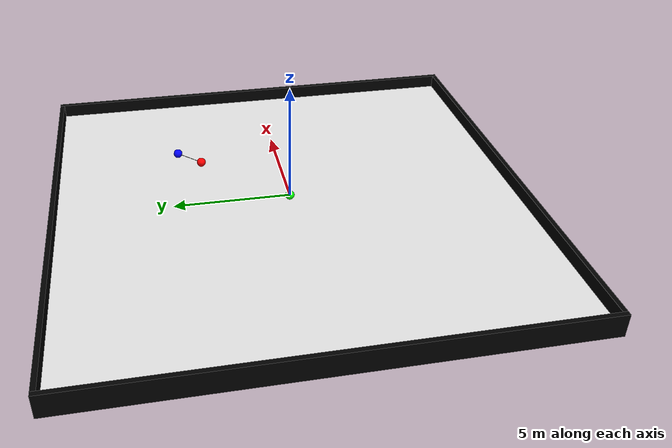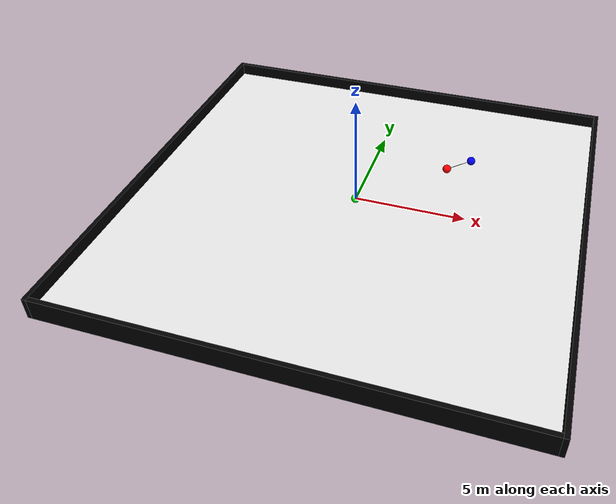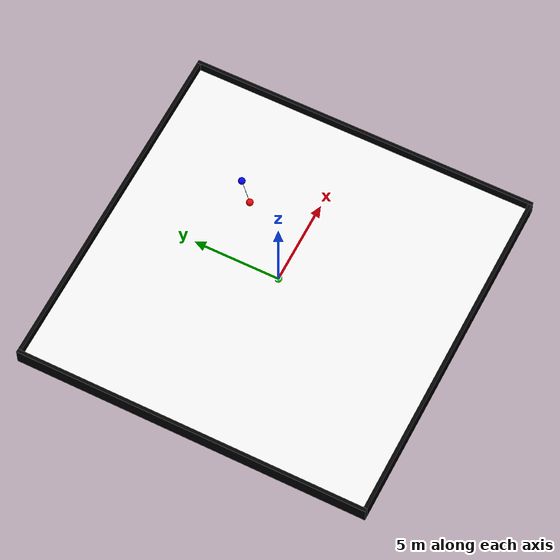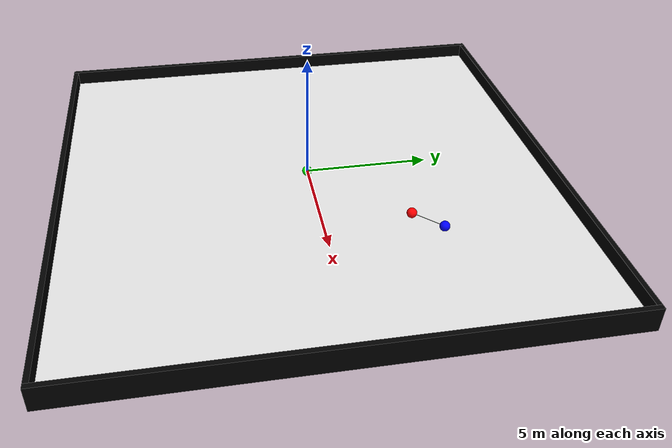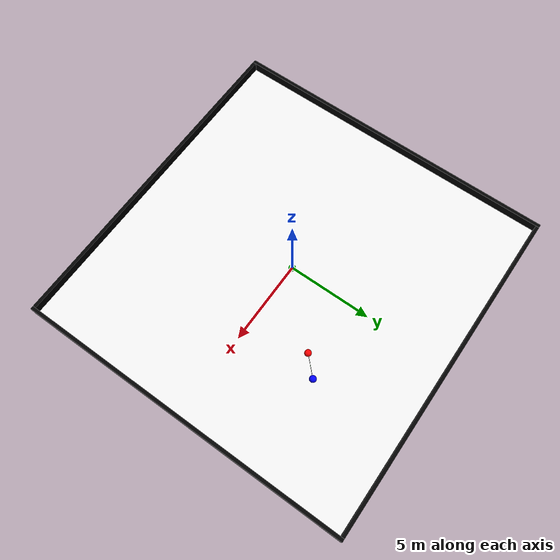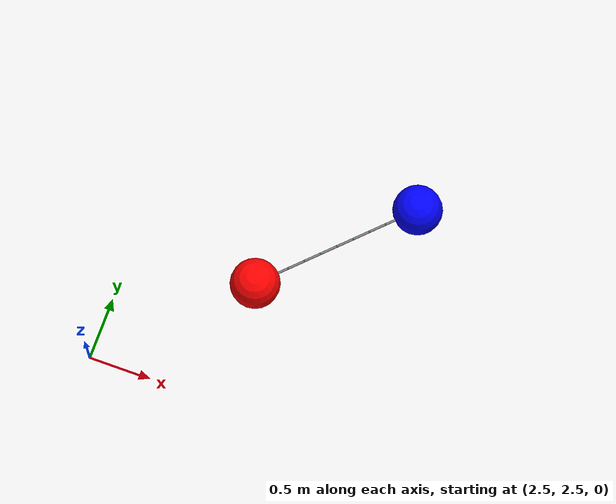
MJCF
<mujoco>
    <option gravity="0 0 0" timestep="0.005"/>
<default>
<geom rgba="0 0 0 1"/>
</default>
    <worldbody>
 	<light diffuse=".2 .2 .2" pos="0 0 20" dir="0 0 -1" mode="track"/>
	<body>
	  <geom name='floor' pos='0 0 -0.4' size='10 10 .1' mass="10000" type='box' condim='3' rgba=".9 .9 .9 1"/>
        <camera name="center" mode="fixed" pos="0 0 30" />
	</body>
	<body>
	  <geom name='wall1' pos='-10.1 0 -0.2' size='.1 10.1 .5' mass="10000" type='box' condim='3'/>
	</body>
	<body>
	  <geom name='wall2' pos='10.1 0 -0.2' size='.1 10.1 .5' mass="10000" type='box' condim='3'/>
	</body>
	<body>
	  <geom name='wall3' pos='0 -10 -0.2' size='10 .1 .5' mass="10000" type='box' condim='3'/>
	</body>
	<body>
	  <geom name='wall4' pos='0 10 -0.2' size='10 .1 .5' mass="10000" type='box' condim='3'/>
	</body>
 	<body name="prey" pos="0 0 0">
            <joint axis="1 0 0" damping="0" name="prey0" pos="0 0 0" type="slide"/>
            <joint axis="0 1 0" damping="0" name="prey1" pos="0 0 0" type="slide"/>
            <geom type="sphere" size="0.2" mass="8" rgba="0 1 0 1"/>
        </body>
	<body name="predator" pos="3.5 3.5 0">
            <joint axis="1 0 0" damping="0" name="predator0" pos="0 0 0" type="slide"/>
            <joint axis="0 1 0" damping="0" name="predator1" pos="0 0 0" type="slide"/>
            <geom type="sphere" size="0.2" mass="10" rgba="1 0 0 1"/>
    	    <site name="end1" pos="0 0 0" type="sphere" size="0.01"/>
        </body>
	<body name="dragger" pos="4.5 4.5 0">
            <joint axis="1 0 0" damping="0" name="dragger0" pos="0 0 0" type="slide"/>
            <joint axis="0 1 0" damping="0" name="dragger1" pos="0 0 0" type="slide"/>
            <geom type="sphere" size="0.2" mass="20" rgba="0 0 1 1"/>
 	    <site name="end2" pos="0 0 0" type="sphere" size="0.01"/>
        </body>

<!--site part-->
        <body name="middle9" pos="4.4 4.4 0">
		<joint axis="1 0 0" damping="0" name="middle9x" pos="0 0 0" type="slide"/>
                <joint axis="0 1 0" damping="0" name="middle9y" pos="0 0 0" type="slide"/>
		<geom type="sphere" size="0.01" mass="0.1" rgba="0 .9 0 1"/>
  		<site name="middle9" pos="0 0 0" type="sphere" size="0.01"/>
	</body>
	<body name="middle8" pos="4.3 4.3 0">
		<joint axis="1 0 0" damping="0" name="middle8x" pos="0 0 0" type="slide"/>
                <joint axis="0 1 0" damping="0" name="middle8y" pos="0 0 0" type="slide"/>
		<geom type="sphere" size="0.01" mass="0.1" rgba="0 .9 0 1"/>
  		<site name="middle8" pos="0 0 0" type="sphere" size="0.01"/>
	</body>
	<body name="middle7" pos="4.2 4.2 0">
		<joint axis="1 0 0" damping="0" name="middle7x" pos="0 0 0" type="slide"/>
                <joint axis="0 1 0" damping="0" name="middle7y" pos="0 0 0" type="slide"/>
		<geom type="sphere" size="0.01" mass="0.1" rgba="0 .9 0 1"/>
  		<site name="middle7" pos="0 0 0" type="sphere" size="0.01"/>
	</body>
	<body name="middle6" pos="4.1 4.1 0">
		<joint axis="1 0 0" damping="0" name="middle6x" pos="0 0 0" type="slide"/>
                <joint axis="0 1 0" damping="0" name="middle6y" pos="0 0 0" type="slide"/>
		<geom type="sphere" size="0.01" mass="0.1" rgba="0 .9 0 1"/>
  		<site name="middle6" pos="0 0 0" type="sphere" size="0.01"/>
	</body>
        <body name="middle5" pos="4.0 4.0 0">
		<joint axis="1 0 0" damping="0" name="middle5x" pos="0 0 0" type="slide"/>
                <joint axis="0 1 0" damping="0" name="middle5y" pos="0 0 0" type="slide"/>
		<geom type="sphere" size="0.01" mass="0.1" rgba="0 .9 0 1"/>
  		<site name="middle5" pos="0 0 0" type="sphere" size="0.01"/>
	</body>
	<body name="middle4" pos="3.9 3.9 0">
		<joint axis="1 0 0" damping="0" name="middle4x" pos="0 0 0" type="slide"/>
                <joint axis="0 1 0" damping="0" name="middle4y" pos="0 0 0" type="slide"/>
		<geom type="sphere" size="0.01" mass="0.1" rgba="0 .9 0 1"/>
  		<site name="middle4" pos="0 0 0" type="sphere" size="0.01"/>
	</body>
	<body name="middle3" pos="3.8 3.8 0">
		<joint axis="1 0 0" damping="0" name="middle3x" pos="0 0 0" type="slide"/>
                <joint axis="0 1 0" damping="0" name="middle3y" pos="0 0 0" type="slide"/>
		<geom type="sphere" size="0.01" mass="0.1" rgba="0 .9 0 1"/>
  		<site name="middle3" pos="0 0 0" type="sphere" size="0.01"/>
	</body>
	<body name="middle2" pos="3.7 3.7 0">
		<joint axis="1 0 0" damping="0" name="middle2x" pos="0 0 0" type="slide"/>
                <joint axis="0 1 0" damping="0" name="middle2y" pos="0 0 0" type="slide"/>
		<geom type="sphere" size="0.01" mass="0.1" rgba="0 .9 0 1"/>
  		<site name="middle2" pos="0 0 0" type="sphere" size="0.01"/>
	</body>
	<body name="middle1" pos="3.6 3.6 0">
		<joint axis="1 0 0" damping="0" name="middle1x" pos="0 0 0" type="slide"/>
                <joint axis="0 1 0" damping="0" name="middle1y" pos="0 0 0" type="slide"/>
		<geom type="sphere" size="0.01" mass="0.1" rgba="0 .9 0 1"/>
  		<site name="middle1" pos="0 0 0" type="sphere" size="0.01"/>
	</body>
    </worldbody>

<!--tendon part-->
    <tendon>
        <spatial limited="true" range="0 .25" stiffness="10" damping=".6" width="0.01">
            <site site="end1"/>
            <site site="middle1"/>
        </spatial>
    </tendon>
    <tendon>
        <spatial limited="true" range="0 .25" stiffness="10" damping=".6" width="0.01">
            <site site="middle1"/>
            <site site="middle2"/>
        </spatial>
    </tendon>
    <tendon>
        <spatial limited="true" range="0 .25" stiffness="10" damping=".6" width="0.01">
            <site site="middle2"/>
            <site site="middle3"/>
        </spatial>
    </tendon>
    <tendon>
        <spatial limited="true" range="0 .25" stiffness="10" damping=".6" width="0.01">
            <site site="middle3"/>
            <site site="middle4"/>
        </spatial>
    </tendon>
    <tendon>
        <spatial limited="true" range="0 .25" stiffness="10" damping=".6" width="0.01">
            <site site="middle4"/>
            <site site="middle5"/>
        </spatial>
    </tendon>
    <tendon>
        <spatial limited="true" range="0 .25" stiffness="10" damping=".6" width="0.01">
            <site site="middle5"/>
            <site site="middle6"/>
        </spatial>
    </tendon>
    <tendon>
        <spatial limited="true" range="0 .25" stiffness="10" damping=".6" width="0.01">
            <site site="middle6"/>
            <site site="middle7"/>
        </spatial>
    </tendon>
    <tendon>
        <spatial limited="true" range="0 .25" stiffness="10" damping=".6" width="0.01">
            <site site="middle7"/>
            <site site="middle8"/>
        </spatial>
    </tendon>
    <tendon>
        <spatial limited="true" range="0 .25" stiffness="10" damping=".6" width="0.01">
            <site site="middle8"/>
            <site site="middle9"/>
        </spatial>
    </tendon>
    <tendon>
        <spatial limited="true" range="0 .25" stiffness="10" damping=".6" width="0.01">
            <site site="middle9"/>
            <site site="end2"/>
        </spatial>
    </tendon>

    <actuator>

        <motor gear="10" joint="prey0"/>
        <motor gear="10" joint="prey1"/>

   	<motor gear="10" joint="predator0"/>
        <motor gear="10" joint="predator1"/>

        <motor gear="10" joint="dragger0"/>
        <motor gear="10" joint="dragger1"/>

 	<motor gear="1" joint="middle9x"/>
        <motor gear="1" joint="middle9y"/>

 	<motor gear="1" joint="middle8x"/>
        <motor gear="1" joint="middle8y"/>

 	<motor gear="1" joint="middle7x"/>
        <motor gear="1" joint="middle7y"/>

 	<motor gear="1" joint="middle6x"/>
        <motor gear="1" joint="middle6y"/>

 	<motor gear="1" joint="middle5x"/>
        <motor gear="1" joint="middle5y"/>

 	<motor gear="1" joint="middle4x"/>
        <motor gear="1" joint="middle4y"/>

 	<motor gear="1" joint="middle3x"/>
        <motor gear="1" joint="middle3y"/>

 	<motor gear="1" joint="middle2x"/>
        <motor gear="1" joint="middle2y"/>

 	<motor gear="1" joint="middle1x"/>
        <motor gear="1" joint="middle1y"/>
    </actuator>
</mujoco>
